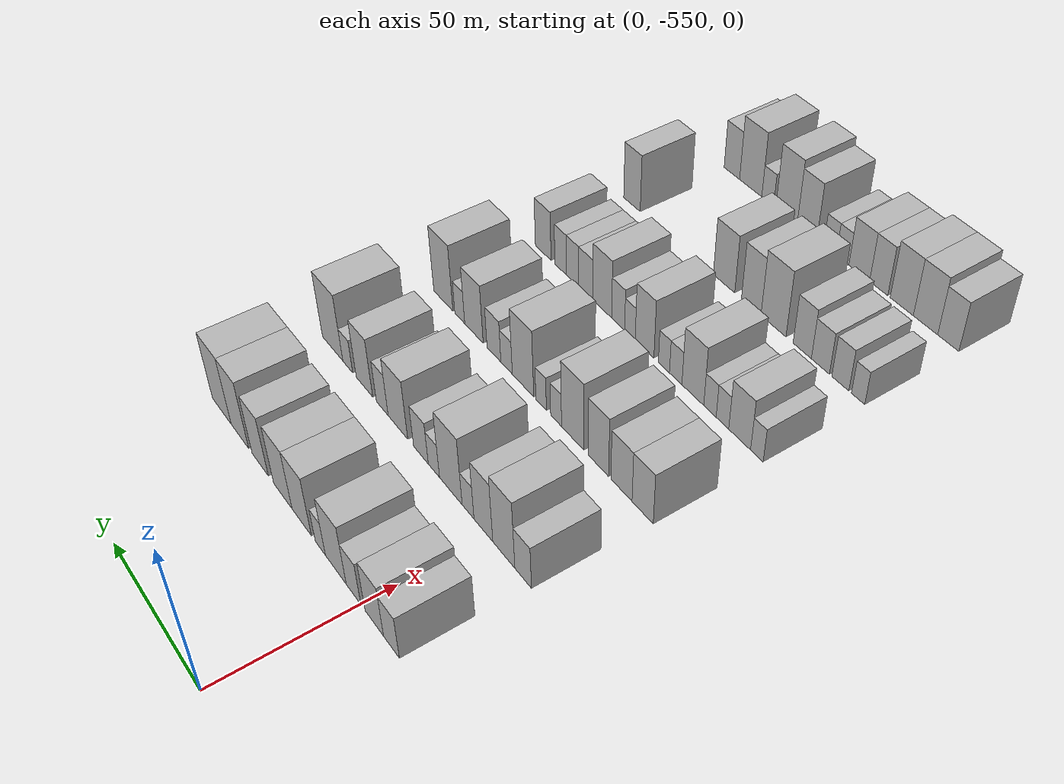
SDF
<sdf version="1.6">
 <world name="default">
  <model name="building_1">
   <static>1</static>
   <pose>50.0000 -564.4000 0 0.000000 0.000000 0.000000</pose>
   <link name="link">
    <pose>0 0 7.50 0 0 0</pose>
    <collision name="collision"><geometry><box><size>20.0000 7.1999 15.0000</size></box></geometry></collision>
    <visual name="visual">
     <cast_shadows>0</cast_shadows>
     <geometry><box><size>20.0000 7.1999 15.0000</size></box></geometry>
     <material>
      <script>
       <uri>model://HANNAS_wall/materials/scripts</uri>
       <uri>model://HANNAS_wall/materials/textures</uri>
       <name>vrc/HANNAS_wall</name>
      </script>
     </material>
    </visual>
   </link>
  </model>
  <model name="building_2">
   <static>1</static>
   <pose>50.0000 -556.4400 0 0.000000 0.000000 0.000000</pose>
   <link name="link">
    <pose>0 0 9.00 0 0 0</pose>
    <collision name="collision"><geometry><box><size>20.0000 8.7201 18.0000</size></box></geometry></collision>
    <visual name="visual">
     <cast_shadows>0</cast_shadows>
     <geometry><box><size>20.0000 8.7201 18.0000</size></box></geometry>
     <material>
      <script>
       <uri>model://HANNAS_wall/materials/scripts</uri>
       <uri>model://HANNAS_wall/materials/textures</uri>
       <name>vrc/HANNAS_wall</name>
      </script>
     </material>
    </visual>
   </link>
  </model>
  <model name="building_3">
   <static>1</static>
   <pose>50.0000 -546.5396 0 0.000000 0.000000 0.000000</pose>
   <link name="link">
    <pose>0 0 7.50 0 0 0</pose>
    <collision name="collision"><geometry><box><size>20.0000 7.0806 15.0000</size></box></geometry></collision>
    <visual name="visual">
     <cast_shadows>0</cast_shadows>
     <geometry><box><size>20.0000 7.0806 15.0000</size></box></geometry>
     <material>
      <script>
       <uri>model://HANNAS_wall/materials/scripts</uri>
       <uri>model://HANNAS_wall/materials/textures</uri>
       <name>vrc/HANNAS_wall</name>
      </script>
     </material>
    </visual>
   </link>
  </model>
  <model name="building_4">
   <static>1</static>
   <pose>50.0000 -537.8108 0 0.000000 0.000000 0.000000</pose>
   <link name="link">
    <pose>0 0 10.50 0 0 0</pose>
    <collision name="collision"><geometry><box><size>20.0000 10.3770 21.0000</size></box></geometry></collision>
    <visual name="visual">
     <cast_shadows>0</cast_shadows>
     <geometry><box><size>20.0000 10.3770 21.0000</size></box></geometry>
     <material>
      <script>
       <uri>model://HANNAS_wall/materials/scripts</uri>
       <uri>model://HANNAS_wall/materials/textures</uri>
       <name>vrc/HANNAS_wall</name>
      </script>
     </material>
    </visual>
   </link>
  </model>
  <model name="building_5">
   <static>1</static>
   <pose>50.0000 -529.9880 0 0.000000 0.000000 0.000000</pose>
   <link name="link">
    <pose>0 0 6.00 0 0 0</pose>
    <collision name="collision"><geometry><box><size>20.0000 5.2685 12.0000</size></box></geometry></collision>
    <visual name="visual">
     <cast_shadows>0</cast_shadows>
     <geometry><box><size>20.0000 5.2685 12.0000</size></box></geometry>
     <material>
      <script>
       <uri>model://HANNAS_wall/materials/scripts</uri>
       <uri>model://HANNAS_wall/materials/textures</uri>
       <name>vrc/HANNAS_wall</name>
      </script>
     </material>
    </visual>
   </link>
  </model>
  <model name="building_6">
   <static>1</static>
   <pose>50.0000 -520.2095 0 0.000000 0.000000 0.000000</pose>
   <link name="link">
    <pose>0 0 10.50 0 0 0</pose>
    <collision name="collision"><geometry><box><size>20.0000 10.2885 21.0000</size></box></geometry></collision>
    <visual name="visual">
     <cast_shadows>0</cast_shadows>
     <geometry><box><size>20.0000 10.2885 21.0000</size></box></geometry>
     <material>
      <script>
       <uri>model://HANNAS_wall/materials/scripts</uri>
       <uri>model://HANNAS_wall/materials/textures</uri>
       <name>vrc/HANNAS_wall</name>
      </script>
     </material>
    </visual>
   </link>
  </model>
  <model name="building_7">
   <static>1</static>
   <pose>50.0000 -509.9929 0 0.000000 0.000000 0.000000</pose>
   <link name="link">
    <pose>0 0 10.50 0 0 0</pose>
    <collision name="collision"><geometry><box><size>20.0000 10.1447 21.0000</size></box></geometry></collision>
    <visual name="visual">
     <cast_shadows>0</cast_shadows>
     <geometry><box><size>20.0000 10.1447 21.0000</size></box></geometry>
     <material>
      <script>
       <uri>model://HANNAS_wall/materials/scripts</uri>
       <uri>model://HANNAS_wall/materials/textures</uri>
       <name>vrc/HANNAS_wall</name>
      </script>
     </material>
    </visual>
   </link>
  </model>
  <model name="building_8">
   <static>1</static>
   <pose>50.0000 -497.2943 0 0.000000 0.000000 0.000000</pose>
   <link name="link">
    <pose>0 0 10.50 0 0 0</pose>
    <collision name="collision"><geometry><box><size>20.0000 9.2524 21.0000</size></box></geometry></collision>
    <visual name="visual">
     <cast_shadows>0</cast_shadows>
     <geometry><box><size>20.0000 9.2524 21.0000</size></box></geometry>
     <material>
      <script>
       <uri>model://HANNAS_wall/materials/scripts</uri>
       <uri>model://HANNAS_wall/materials/textures</uri>
       <name>vrc/HANNAS_wall</name>
      </script>
     </material>
    </visual>
   </link>
  </model>
  <model name="building_9">
   <static>1</static>
   <pose>50.0000 -485.4464 0 0.000000 0.000000 0.000000</pose>
   <link name="link">
    <pose>0 0 12.00 0 0 0</pose>
    <collision name="collision"><geometry><box><size>20.0000 10.4436 24.0000</size></box></geometry></collision>
    <visual name="visual">
     <cast_shadows>0</cast_shadows>
     <geometry><box><size>20.0000 10.4436 24.0000</size></box></geometry>
     <material>
      <script>
       <uri>model://HANNAS_wall/materials/scripts</uri>
       <uri>model://HANNAS_wall/materials/textures</uri>
       <name>vrc/HANNAS_wall</name>
      </script>
     </material>
    </visual>
   </link>
  </model>
  <model name="building_10">
   <static>1</static>
   <pose>50.0000 -474.4987 0 0.000000 0.000000 0.000000</pose>
   <link name="link">
    <pose>0 0 12.00 0 0 0</pose>
    <collision name="collision"><geometry><box><size>20.0000 11.4517 24.0000</size></box></geometry></collision>
    <visual name="visual">
     <cast_shadows>0</cast_shadows>
     <geometry><box><size>20.0000 11.4517 24.0000</size></box></geometry>
     <material>
      <script>
       <uri>model://HANNAS_wall/materials/scripts</uri>
       <uri>model://HANNAS_wall/materials/textures</uri>
       <name>vrc/HANNAS_wall</name>
      </script>
     </material>
    </visual>
   </link>
  </model>
  <model name="building_126">
   <static>1</static>
   <pose>85.0000 -565.4283 0 0.000000 0.000000 0.000000</pose>
   <link name="link">
    <pose>0 0 7.50 0 0 0</pose>
    <collision name="collision"><geometry><box><size>20.0000 7.1434 15.0000</size></box></geometry></collision>
    <visual name="visual">
     <cast_shadows>0</cast_shadows>
     <geometry><box><size>20.0000 7.1434 15.0000</size></box></geometry>
     <material>
      <script>
       <uri>model://HANNAS_wall/materials/scripts</uri>
       <uri>model://HANNAS_wall/materials/textures</uri>
       <name>vrc/HANNAS_wall</name>
      </script>
     </material>
    </visual>
   </link>
  </model>
  <model name="building_127">
   <static>1</static>
   <pose>85.0000 -556.9832 0 0.000000 0.000000 0.000000</pose>
   <link name="link">
    <pose>0 0 12.00 0 0 0</pose>
    <collision name="collision"><geometry><box><size>20.0000 9.7467 24.0000</size></box></geometry></collision>
    <visual name="visual">
     <cast_shadows>0</cast_shadows>
     <geometry><box><size>20.0000 9.7467 24.0000</size></box></geometry>
     <material>
      <script>
       <uri>model://HANNAS_wall/materials/scripts</uri>
       <uri>model://HANNAS_wall/materials/textures</uri>
       <name>vrc/HANNAS_wall</name>
      </script>
     </material>
    </visual>
   </link>
  </model>
  <model name="building_128">
   <static>1</static>
   <pose>85.0000 -547.8302 0 0.000000 0.000000 0.000000</pose>
   <link name="link">
    <pose>0 0 10.50 0 0 0</pose>
    <collision name="collision"><geometry><box><size>20.0000 8.5592 21.0000</size></box></geometry></collision>
    <visual name="visual">
     <cast_shadows>0</cast_shadows>
     <geometry><box><size>20.0000 8.5592 21.0000</size></box></geometry>
     <material>
      <script>
       <uri>model://HANNAS_wall/materials/scripts</uri>
       <uri>model://HANNAS_wall/materials/textures</uri>
       <name>vrc/HANNAS_wall</name>
      </script>
     </material>
    </visual>
   </link>
  </model>
  <model name="building_129">
   <static>1</static>
   <pose>85.0000 -540.7961 0 0.000000 0.000000 0.000000</pose>
   <link name="link">
    <pose>0 0 6.00 0 0 0</pose>
    <collision name="collision"><geometry><box><size>20.0000 5.5089 12.0000</size></box></geometry></collision>
    <visual name="visual">
     <cast_shadows>0</cast_shadows>
     <geometry><box><size>20.0000 5.5089 12.0000</size></box></geometry>
     <material>
      <script>
       <uri>model://HANNAS_wall/materials/scripts</uri>
       <uri>model://HANNAS_wall/materials/textures</uri>
       <name>vrc/HANNAS_wall</name>
      </script>
     </material>
    </visual>
   </link>
  </model>
  <model name="building_130">
   <static>1</static>
   <pose>85.0000 -532.6254 0 0.000000 0.000000 0.000000</pose>
   <link name="link">
    <pose>0 0 12.00 0 0 0</pose>
    <collision name="collision"><geometry><box><size>20.0000 10.8325 24.0000</size></box></geometry></collision>
    <visual name="visual">
     <cast_shadows>0</cast_shadows>
     <geometry><box><size>20.0000 10.8325 24.0000</size></box></geometry>
     <material>
      <script>
       <uri>model://HANNAS_wall/materials/scripts</uri>
       <uri>model://HANNAS_wall/materials/textures</uri>
       <name>vrc/HANNAS_wall</name>
      </script>
     </material>
    </visual>
   </link>
  </model>
  <model name="building_131">
   <static>1</static>
   <pose>85.0000 -524.4438 0 0.000000 0.000000 0.000000</pose>
   <link name="link">
    <pose>0 0 6.00 0 0 0</pose>
    <collision name="collision"><geometry><box><size>20.0000 5.5306 12.0000</size></box></geometry></collision>
    <visual name="visual">
     <cast_shadows>0</cast_shadows>
     <geometry><box><size>20.0000 5.5306 12.0000</size></box></geometry>
     <material>
      <script>
       <uri>model://HANNAS_wall/materials/scripts</uri>
       <uri>model://HANNAS_wall/materials/textures</uri>
       <name>vrc/HANNAS_wall</name>
      </script>
     </material>
    </visual>
   </link>
  </model>
  <model name="building_132">
   <static>1</static>
   <pose>85.0000 -517.9896 0 0.000000 0.000000 0.000000</pose>
   <link name="link">
    <pose>0 0 7.50 0 0 0</pose>
    <collision name="collision"><geometry><box><size>20.0000 7.3778 15.0000</size></box></geometry></collision>
    <visual name="visual">
     <cast_shadows>0</cast_shadows>
     <geometry><box><size>20.0000 7.3778 15.0000</size></box></geometry>
     <material>
      <script>
       <uri>model://HANNAS_wall/materials/scripts</uri>
       <uri>model://HANNAS_wall/materials/textures</uri>
       <name>vrc/HANNAS_wall</name>
      </script>
     </material>
    </visual>
   </link>
  </model>
  <model name="building_133">
   <static>1</static>
   <pose>85.0000 -506.2135 0 0.000000 0.000000 0.000000</pose>
   <link name="link">
    <pose>0 0 10.50 0 0 0</pose>
    <collision name="collision"><geometry><box><size>20.0000 10.1746 21.0000</size></box></geometry></collision>
    <visual name="visual">
     <cast_shadows>0</cast_shadows>
     <geometry><box><size>20.0000 10.1746 21.0000</size></box></geometry>
     <material>
      <script>
       <uri>model://HANNAS_wall/materials/scripts</uri>
       <uri>model://HANNAS_wall/materials/textures</uri>
       <name>vrc/HANNAS_wall</name>
      </script>
     </material>
    </visual>
   </link>
  </model>
  <model name="building_134">
   <static>1</static>
   <pose>85.0000 -497.9697 0 0.000000 0.000000 0.000000</pose>
   <link name="link">
    <pose>0 0 7.50 0 0 0</pose>
    <collision name="collision"><geometry><box><size>20.0000 6.3129 15.0000</size></box></geometry></collision>
    <visual name="visual">
     <cast_shadows>0</cast_shadows>
     <geometry><box><size>20.0000 6.3129 15.0000</size></box></geometry>
     <material>
      <script>
       <uri>model://HANNAS_wall/materials/scripts</uri>
       <uri>model://HANNAS_wall/materials/textures</uri>
       <name>vrc/HANNAS_wall</name>
      </script>
     </material>
    </visual>
   </link>
  </model>
  <model name="building_135">
   <static>1</static>
   <pose>85.0000 -488.3057 0 0.000000 0.000000 0.000000</pose>
   <link name="link">
    <pose>0 0 10.50 0 0 0</pose>
    <collision name="collision"><geometry><box><size>20.0000 9.0151 21.0000</size></box></geometry></collision>
    <visual name="visual">
     <cast_shadows>0</cast_shadows>
     <geometry><box><size>20.0000 9.0151 21.0000</size></box></geometry>
     <material>
      <script>
       <uri>model://HANNAS_wall/materials/scripts</uri>
       <uri>model://HANNAS_wall/materials/textures</uri>
       <name>vrc/HANNAS_wall</name>
      </script>
     </material>
    </visual>
   </link>
  </model>
  <model name="building_136">
   <static>1</static>
   <pose>85.0000 -479.0020 0 0.000000 0.000000 0.000000</pose>
   <link name="link">
    <pose>0 0 6.00 0 0 0</pose>
    <collision name="collision"><geometry><box><size>20.0000 5.5922 12.0000</size></box></geometry></collision>
    <visual name="visual">
     <cast_shadows>0</cast_shadows>
     <geometry><box><size>20.0000 5.5922 12.0000</size></box></geometry>
     <material>
      <script>
       <uri>model://HANNAS_wall/materials/scripts</uri>
       <uri>model://HANNAS_wall/materials/textures</uri>
       <name>vrc/HANNAS_wall</name>
      </script>
     </material>
    </visual>
   </link>
  </model>
  <model name="building_137">
   <static>1</static>
   <pose>85.0000 -470.2932 0 0.000000 0.000000 0.000000</pose>
   <link name="link">
    <pose>0 0 12.00 0 0 0</pose>
    <collision name="collision"><geometry><box><size>20.0000 11.8255 24.0000</size></box></geometry></collision>
    <visual name="visual">
     <cast_shadows>0</cast_shadows>
     <geometry><box><size>20.0000 11.8255 24.0000</size></box></geometry>
     <material>
      <script>
       <uri>model://HANNAS_wall/materials/scripts</uri>
       <uri>model://HANNAS_wall/materials/textures</uri>
       <name>vrc/HANNAS_wall</name>
      </script>
     </material>
    </visual>
   </link>
  </model>
  <model name="building_254">
   <static>1</static>
   <pose>120.0000 -565.6481 0 0.000000 0.000000 0.000000</pose>
   <link name="link">
    <pose>0 0 9.00 0 0 0</pose>
    <collision name="collision"><geometry><box><size>20.0000 8.7039 18.0000</size></box></geometry></collision>
    <visual name="visual">
     <cast_shadows>0</cast_shadows>
     <geometry><box><size>20.0000 8.7039 18.0000</size></box></geometry>
     <material>
      <script>
       <uri>model://HANNAS_wall/materials/scripts</uri>
       <uri>model://HANNAS_wall/materials/textures</uri>
       <name>vrc/HANNAS_wall</name>
      </script>
     </material>
    </visual>
   </link>
  </model>
  <model name="building_255">
   <static>1</static>
   <pose>120.0000 -556.8426 0 0.000000 0.000000 0.000000</pose>
   <link name="link">
    <pose>0 0 9.00 0 0 0</pose>
    <collision name="collision"><geometry><box><size>20.0000 8.9070 18.0000</size></box></geometry></collision>
    <visual name="visual">
     <cast_shadows>0</cast_shadows>
     <geometry><box><size>20.0000 8.9070 18.0000</size></box></geometry>
     <material>
      <script>
       <uri>model://HANNAS_wall/materials/scripts</uri>
       <uri>model://HANNAS_wall/materials/textures</uri>
       <name>vrc/HANNAS_wall</name>
      </script>
     </material>
    </visual>
   </link>
  </model>
  <model name="building_256">
   <static>1</static>
   <pose>120.0000 -546.9304 0 0.000000 0.000000 0.000000</pose>
   <link name="link">
    <pose>0 0 10.50 0 0 0</pose>
    <collision name="collision"><geometry><box><size>20.0000 8.9175 21.0000</size></box></geometry></collision>
    <visual name="visual">
     <cast_shadows>0</cast_shadows>
     <geometry><box><size>20.0000 8.9175 21.0000</size></box></geometry>
     <material>
      <script>
       <uri>model://HANNAS_wall/materials/scripts</uri>
       <uri>model://HANNAS_wall/materials/textures</uri>
       <name>vrc/HANNAS_wall</name>
      </script>
     </material>
    </visual>
   </link>
  </model>
  <model name="building_257">
   <static>1</static>
   <pose>120.0000 -535.4511 0 0.000000 0.000000 0.000000</pose>
   <link name="link">
    <pose>0 0 12.00 0 0 0</pose>
    <collision name="collision"><geometry><box><size>20.0000 10.0412 24.0000</size></box></geometry></collision>
    <visual name="visual">
     <cast_shadows>0</cast_shadows>
     <geometry><box><size>20.0000 10.0412 24.0000</size></box></geometry>
     <material>
      <script>
       <uri>model://HANNAS_wall/materials/scripts</uri>
       <uri>model://HANNAS_wall/materials/textures</uri>
       <name>vrc/HANNAS_wall</name>
      </script>
     </material>
    </visual>
   </link>
  </model>
  <model name="building_258">
   <static>1</static>
   <pose>120.0000 -527.9104 0 0.000000 0.000000 0.000000</pose>
   <link name="link">
    <pose>0 0 6.00 0 0 0</pose>
    <collision name="collision"><geometry><box><size>20.0000 5.0403 12.0000</size></box></geometry></collision>
    <visual name="visual">
     <cast_shadows>0</cast_shadows>
     <geometry><box><size>20.0000 5.0403 12.0000</size></box></geometry>
     <material>
      <script>
       <uri>model://HANNAS_wall/materials/scripts</uri>
       <uri>model://HANNAS_wall/materials/textures</uri>
       <name>vrc/HANNAS_wall</name>
      </script>
     </material>
    </visual>
   </link>
  </model>
  <model name="building_259">
   <static>1</static>
   <pose>120.0000 -520.9010 0 0.000000 0.000000 0.000000</pose>
   <link name="link">
    <pose>0 0 6.00 0 0 0</pose>
    <collision name="collision"><geometry><box><size>20.0000 4.9784 12.0000</size></box></geometry></collision>
    <visual name="visual">
     <cast_shadows>0</cast_shadows>
     <geometry><box><size>20.0000 4.9784 12.0000</size></box></geometry>
     <material>
      <script>
       <uri>model://HANNAS_wall/materials/scripts</uri>
       <uri>model://HANNAS_wall/materials/textures</uri>
       <name>vrc/HANNAS_wall</name>
      </script>
     </material>
    </visual>
   </link>
  </model>
  <model name="building_260">
   <static>1</static>
   <pose>120.0000 -512.1886 0 0.000000 0.000000 0.000000</pose>
   <link name="link">
    <pose>0 0 12.00 0 0 0</pose>
    <collision name="collision"><geometry><box><size>20.0000 10.4464 24.0000</size></box></geometry></collision>
    <visual name="visual">
     <cast_shadows>0</cast_shadows>
     <geometry><box><size>20.0000 10.4464 24.0000</size></box></geometry>
     <material>
      <script>
       <uri>model://HANNAS_wall/materials/scripts</uri>
       <uri>model://HANNAS_wall/materials/textures</uri>
       <name>vrc/HANNAS_wall</name>
      </script>
     </material>
    </visual>
   </link>
  </model>
  <model name="building_261">
   <static>1</static>
   <pose>120.0000 -504.1127 0 0.000000 0.000000 0.000000</pose>
   <link name="link">
    <pose>0 0 6.00 0 0 0</pose>
    <collision name="collision"><geometry><box><size>20.0000 5.7055 12.0000</size></box></geometry></collision>
    <visual name="visual">
     <cast_shadows>0</cast_shadows>
     <geometry><box><size>20.0000 5.7055 12.0000</size></box></geometry>
     <material>
      <script>
       <uri>model://HANNAS_wall/materials/scripts</uri>
       <uri>model://HANNAS_wall/materials/textures</uri>
       <name>vrc/HANNAS_wall</name>
      </script>
     </material>
    </visual>
   </link>
  </model>
  <model name="building_262">
   <static>1</static>
   <pose>120.0000 -497.7507 0 0.000000 0.000000 0.000000</pose>
   <link name="link">
    <pose>0 0 7.50 0 0 0</pose>
    <collision name="collision"><geometry><box><size>20.0000 7.0185 15.0000</size></box></geometry></collision>
    <visual name="visual">
     <cast_shadows>0</cast_shadows>
     <geometry><box><size>20.0000 7.0185 15.0000</size></box></geometry>
     <material>
      <script>
       <uri>model://HANNAS_wall/materials/scripts</uri>
       <uri>model://HANNAS_wall/materials/textures</uri>
       <name>vrc/HANNAS_wall</name>
      </script>
     </material>
    </visual>
   </link>
  </model>
  <model name="building_263">
   <static>1</static>
   <pose>120.0000 -487.4108 0 0.000000 0.000000 0.000000</pose>
   <link name="link">
    <pose>0 0 10.50 0 0 0</pose>
    <collision name="collision"><geometry><box><size>20.0000 9.6613 21.0000</size></box></geometry></collision>
    <visual name="visual">
     <cast_shadows>0</cast_shadows>
     <geometry><box><size>20.0000 9.6613 21.0000</size></box></geometry>
     <material>
      <script>
       <uri>model://HANNAS_wall/materials/scripts</uri>
       <uri>model://HANNAS_wall/materials/textures</uri>
       <name>vrc/HANNAS_wall</name>
      </script>
     </material>
    </visual>
   </link>
  </model>
  <model name="building_264">
   <static>1</static>
   <pose>120.0000 -479.9285 0 0.000000 0.000000 0.000000</pose>
   <link name="link">
    <pose>0 0 6.00 0 0 0</pose>
    <collision name="collision"><geometry><box><size>20.0000 5.3032 12.0000</size></box></geometry></collision>
    <visual name="visual">
     <cast_shadows>0</cast_shadows>
     <geometry><box><size>20.0000 5.3032 12.0000</size></box></geometry>
     <material>
      <script>
       <uri>model://HANNAS_wall/materials/scripts</uri>
       <uri>model://HANNAS_wall/materials/textures</uri>
       <name>vrc/HANNAS_wall</name>
      </script>
     </material>
    </visual>
   </link>
  </model>
  <model name="building_265">
   <static>1</static>
   <pose>120.0000 -471.0149 0 0.000000 0.000000 0.000000</pose>
   <link name="link">
    <pose>0 0 12.00 0 0 0</pose>
    <collision name="collision"><geometry><box><size>20.0000 10.5240 24.0000</size></box></geometry></collision>
    <visual name="visual">
     <cast_shadows>0</cast_shadows>
     <geometry><box><size>20.0000 10.5240 24.0000</size></box></geometry>
     <material>
      <script>
       <uri>model://HANNAS_wall/materials/scripts</uri>
       <uri>model://HANNAS_wall/materials/textures</uri>
       <name>vrc/HANNAS_wall</name>
      </script>
     </material>
    </visual>
   </link>
  </model>
  <model name="building_390">
   <static>1</static>
   <pose>155.0000 -567.5108 0 0.000000 0.000000 0.000000</pose>
   <link name="link">
    <pose>0 0 6.00 0 0 0</pose>
    <collision name="collision"><geometry><box><size>20.0000 4.9784 12.0000</size></box></geometry></collision>
    <visual name="visual">
     <cast_shadows>0</cast_shadows>
     <geometry><box><size>20.0000 4.9784 12.0000</size></box></geometry>
     <material>
      <script>
       <uri>model://HANNAS_wall/materials/scripts</uri>
       <uri>model://HANNAS_wall/materials/textures</uri>
       <name>vrc/HANNAS_wall</name>
      </script>
     </material>
    </visual>
   </link>
  </model>
  <model name="building_391">
   <static>1</static>
   <pose>155.0000 -560.5972 0 0.000000 0.000000 0.000000</pose>
   <link name="link">
    <pose>0 0 9.00 0 0 0</pose>
    <collision name="collision"><geometry><box><size>20.0000 8.8489 18.0000</size></box></geometry></collision>
    <visual name="visual">
     <cast_shadows>0</cast_shadows>
     <geometry><box><size>20.0000 8.8489 18.0000</size></box></geometry>
     <material>
      <script>
       <uri>model://HANNAS_wall/materials/scripts</uri>
       <uri>model://HANNAS_wall/materials/textures</uri>
       <name>vrc/HANNAS_wall</name>
      </script>
     </material>
    </visual>
   </link>
  </model>
  <model name="building_392">
   <static>1</static>
   <pose>155.0000 -553.5778 0 0.000000 0.000000 0.000000</pose>
   <link name="link">
    <pose>0 0 6.00 0 0 0</pose>
    <collision name="collision"><geometry><box><size>20.0000 5.1900 12.0000</size></box></geometry></collision>
    <visual name="visual">
     <cast_shadows>0</cast_shadows>
     <geometry><box><size>20.0000 5.1900 12.0000</size></box></geometry>
     <material>
      <script>
       <uri>model://HANNAS_wall/materials/scripts</uri>
       <uri>model://HANNAS_wall/materials/textures</uri>
       <name>vrc/HANNAS_wall</name>
      </script>
     </material>
    </visual>
   </link>
  </model>
  <model name="building_393">
   <static>1</static>
   <pose>155.0000 -548.3781 0 0.000000 0.000000 0.000000</pose>
   <link name="link">
    <pose>0 0 6.00 0 0 0</pose>
    <collision name="collision"><geometry><box><size>20.0000 5.2093 12.0000</size></box></geometry></collision>
    <visual name="visual">
     <cast_shadows>0</cast_shadows>
     <geometry><box><size>20.0000 5.2093 12.0000</size></box></geometry>
     <material>
      <script>
       <uri>model://HANNAS_wall/materials/scripts</uri>
       <uri>model://HANNAS_wall/materials/textures</uri>
       <name>vrc/HANNAS_wall</name>
      </script>
     </material>
    </visual>
   </link>
  </model>
  <model name="building_394">
   <static>1</static>
   <pose>155.0000 -541.0785 0 0.000000 0.000000 0.000000</pose>
   <link name="link">
    <pose>0 0 10.50 0 0 0</pose>
    <collision name="collision"><geometry><box><size>20.0000 9.3899 21.0000</size></box></geometry></collision>
    <visual name="visual">
     <cast_shadows>0</cast_shadows>
     <geometry><box><size>20.0000 9.3899 21.0000</size></box></geometry>
     <material>
      <script>
       <uri>model://HANNAS_wall/materials/scripts</uri>
       <uri>model://HANNAS_wall/materials/textures</uri>
       <name>vrc/HANNAS_wall</name>
      </script>
     </material>
    </visual>
   </link>
  </model>
  <model name="building_395">
   <static>1</static>
   <pose>155.0000 -533.6454 0 0.000000 0.000000 0.000000</pose>
   <link name="link">
    <pose>0 0 6.00 0 0 0</pose>
    <collision name="collision"><geometry><box><size>20.0000 5.4763 12.0000</size></box></geometry></collision>
    <visual name="visual">
     <cast_shadows>0</cast_shadows>
     <geometry><box><size>20.0000 5.4763 12.0000</size></box></geometry>
     <material>
      <script>
       <uri>model://HANNAS_wall/materials/scripts</uri>
       <uri>model://HANNAS_wall/materials/textures</uri>
       <name>vrc/HANNAS_wall</name>
      </script>
     </material>
    </visual>
   </link>
  </model>
  <model name="building_396">
   <static>1</static>
   <pose>155.0000 -528.4317 0 0.000000 0.000000 0.000000</pose>
   <link name="link">
    <pose>0 0 6.00 0 0 0</pose>
    <collision name="collision"><geometry><box><size>20.0000 4.9513 12.0000</size></box></geometry></collision>
    <visual name="visual">
     <cast_shadows>0</cast_shadows>
     <geometry><box><size>20.0000 4.9513 12.0000</size></box></geometry>
     <material>
      <script>
       <uri>model://HANNAS_wall/materials/scripts</uri>
       <uri>model://HANNAS_wall/materials/textures</uri>
       <name>vrc/HANNAS_wall</name>
      </script>
     </material>
    </visual>
   </link>
  </model>
  <model name="building_397">
   <static>1</static>
   <pose>155.0000 -519.6773 0 0.000000 0.000000 0.000000</pose>
   <link name="link">
    <pose>0 0 10.50 0 0 0</pose>
    <collision name="collision"><geometry><box><size>20.0000 8.5575 21.0000</size></box></geometry></collision>
    <visual name="visual">
     <cast_shadows>0</cast_shadows>
     <geometry><box><size>20.0000 8.5575 21.0000</size></box></geometry>
     <material>
      <script>
       <uri>model://HANNAS_wall/materials/scripts</uri>
       <uri>model://HANNAS_wall/materials/textures</uri>
       <name>vrc/HANNAS_wall</name>
      </script>
     </material>
    </visual>
   </link>
  </model>
  <model name="building_398">
   <static>1</static>
   <pose>155.0000 -512.9215 0 0.000000 0.000000 0.000000</pose>
   <link name="link">
    <pose>0 0 6.00 0 0 0</pose>
    <collision name="collision"><geometry><box><size>20.0000 4.9541 12.0000</size></box></geometry></collision>
    <visual name="visual">
     <cast_shadows>0</cast_shadows>
     <geometry><box><size>20.0000 4.9541 12.0000</size></box></geometry>
     <material>
      <script>
       <uri>model://HANNAS_wall/materials/scripts</uri>
       <uri>model://HANNAS_wall/materials/textures</uri>
       <name>vrc/HANNAS_wall</name>
      </script>
     </material>
    </visual>
   </link>
  </model>
  <model name="building_399">
   <static>1</static>
   <pose>155.0000 -507.3686 0 0.000000 0.000000 0.000000</pose>
   <link name="link">
    <pose>0 0 7.50 0 0 0</pose>
    <collision name="collision"><geometry><box><size>20.0000 6.1516 15.0000</size></box></geometry></collision>
    <visual name="visual">
     <cast_shadows>0</cast_shadows>
     <geometry><box><size>20.0000 6.1516 15.0000</size></box></geometry>
     <material>
      <script>
       <uri>model://HANNAS_wall/materials/scripts</uri>
       <uri>model://HANNAS_wall/materials/textures</uri>
       <name>vrc/HANNAS_wall</name>
      </script>
     </material>
    </visual>
   </link>
  </model>
  <model name="building_400">
   <static>1</static>
   <pose>155.0000 -499.7599 0 0.000000 0.000000 0.000000</pose>
   <link name="link">
    <pose>0 0 10.50 0 0 0</pose>
    <collision name="collision"><geometry><box><size>20.0000 9.0657 21.0000</size></box></geometry></collision>
    <visual name="visual">
     <cast_shadows>0</cast_shadows>
     <geometry><box><size>20.0000 9.0657 21.0000</size></box></geometry>
     <material>
      <script>
       <uri>model://HANNAS_wall/materials/scripts</uri>
       <uri>model://HANNAS_wall/materials/textures</uri>
       <name>vrc/HANNAS_wall</name>
      </script>
     </material>
    </visual>
   </link>
  </model>
  <model name="building_401">
   <static>1</static>
   <pose>155.0000 -491.7102 0 0.000000 0.000000 0.000000</pose>
   <link name="link">
    <pose>0 0 7.50 0 0 0</pose>
    <collision name="collision"><geometry><box><size>20.0000 7.0338 15.0000</size></box></geometry></collision>
    <visual name="visual">
     <cast_shadows>0</cast_shadows>
     <geometry><box><size>20.0000 7.0338 15.0000</size></box></geometry>
     <material>
      <script>
       <uri>model://HANNAS_wall/materials/scripts</uri>
       <uri>model://HANNAS_wall/materials/textures</uri>
       <name>vrc/HANNAS_wall</name>
      </script>
     </material>
    </visual>
   </link>
  </model>
  <model name="building_402">
   <static>1</static>
   <pose>155.0000 -485.0909 0 0.000000 0.000000 0.000000</pose>
   <link name="link">
    <pose>0 0 7.50 0 0 0</pose>
    <collision name="collision"><geometry><box><size>20.0000 6.2047 15.0000</size></box></geometry></collision>
    <visual name="visual">
     <cast_shadows>0</cast_shadows>
     <geometry><box><size>20.0000 6.2047 15.0000</size></box></geometry>
     <material>
      <script>
       <uri>model://HANNAS_wall/materials/scripts</uri>
       <uri>model://HANNAS_wall/materials/textures</uri>
       <name>vrc/HANNAS_wall</name>
      </script>
     </material>
    </visual>
   </link>
  </model>
  <model name="building_403">
   <static>1</static>
   <pose>155.0000 -478.9840 0 0.000000 0.000000 0.000000</pose>
   <link name="link">
    <pose>0 0 7.50 0 0 0</pose>
    <collision name="collision"><geometry><box><size>20.0000 6.0091 15.0000</size></box></geometry></collision>
    <visual name="visual">
     <cast_shadows>0</cast_shadows>
     <geometry><box><size>20.0000 6.0091 15.0000</size></box></geometry>
     <material>
      <script>
       <uri>model://HANNAS_wall/materials/scripts</uri>
       <uri>model://HANNAS_wall/materials/textures</uri>
       <name>vrc/HANNAS_wall</name>
      </script>
     </material>
    </visual>
   </link>
  </model>
  <model name="building_404">
   <static>1</static>
   <pose>155.0000 -469.8582 0 0.000000 0.000000 0.000000</pose>
   <link name="link">
    <pose>0 0 9.00 0 0 0</pose>
    <collision name="collision"><geometry><box><size>20.0000 8.2426 18.0000</size></box></geometry></collision>
    <visual name="visual">
     <cast_shadows>0</cast_shadows>
     <geometry><box><size>20.0000 8.2426 18.0000</size></box></geometry>
     <material>
      <script>
       <uri>model://HANNAS_wall/materials/scripts</uri>
       <uri>model://HANNAS_wall/materials/textures</uri>
       <name>vrc/HANNAS_wall</name>
      </script>
     </material>
    </visual>
   </link>
  </model>
  <model name="building_517">
   <static>1</static>
   <pose>190.0000 -567.4225 0 0.000000 0.000000 0.000000</pose>
   <link name="link">
    <pose>0 0 6.00 0 0 0</pose>
    <collision name="collision"><geometry><box><size>20.0000 5.1549 12.0000</size></box></geometry></collision>
    <visual name="visual">
     <cast_shadows>0</cast_shadows>
     <geometry><box><size>20.0000 5.1549 12.0000</size></box></geometry>
     <material>
      <script>
       <uri>model://HANNAS_wall/materials/scripts</uri>
       <uri>model://HANNAS_wall/materials/textures</uri>
       <name>vrc/HANNAS_wall</name>
      </script>
     </material>
    </visual>
   </link>
  </model>
  <model name="building_518">
   <static>1</static>
   <pose>190.0000 -560.4899 0 0.000000 0.000000 0.000000</pose>
   <link name="link">
    <pose>0 0 7.50 0 0 0</pose>
    <collision name="collision"><geometry><box><size>20.0000 6.7103 15.0000</size></box></geometry></collision>
    <visual name="visual">
     <cast_shadows>0</cast_shadows>
     <geometry><box><size>20.0000 6.7103 15.0000</size></box></geometry>
     <material>
      <script>
       <uri>model://HANNAS_wall/materials/scripts</uri>
       <uri>model://HANNAS_wall/materials/textures</uri>
       <name>vrc/HANNAS_wall</name>
      </script>
     </material>
    </visual>
   </link>
  </model>
  <model name="building_519">
   <static>1</static>
   <pose>190.0000 -552.4967 0 0.000000 0.000000 0.000000</pose>
   <link name="link">
    <pose>0 0 7.50 0 0 0</pose>
    <collision name="collision"><geometry><box><size>20.0000 7.2760 15.0000</size></box></geometry></collision>
    <visual name="visual">
     <cast_shadows>0</cast_shadows>
     <geometry><box><size>20.0000 7.2760 15.0000</size></box></geometry>
     <material>
      <script>
       <uri>model://HANNAS_wall/materials/scripts</uri>
       <uri>model://HANNAS_wall/materials/textures</uri>
       <name>vrc/HANNAS_wall</name>
      </script>
     </material>
    </visual>
   </link>
  </model>
  <model name="building_520">
   <static>1</static>
   <pose>190.0000 -545.0908 0 0.000000 0.000000 0.000000</pose>
   <link name="link">
    <pose>0 0 9.00 0 0 0</pose>
    <collision name="collision"><geometry><box><size>20.0000 7.5359 18.0000</size></box></geometry></collision>
    <visual name="visual">
     <cast_shadows>0</cast_shadows>
     <geometry><box><size>20.0000 7.5359 18.0000</size></box></geometry>
     <material>
      <script>
       <uri>model://HANNAS_wall/materials/scripts</uri>
       <uri>model://HANNAS_wall/materials/textures</uri>
       <name>vrc/HANNAS_wall</name>
      </script>
     </material>
    </visual>
   </link>
  </model>
  <model name="building_521">
   <static>1</static>
   <pose>190.0000 -532.9529 0 0.000000 0.000000 0.000000</pose>
   <link name="link">
    <pose>0 0 12.00 0 0 0</pose>
    <collision name="collision"><geometry><box><size>20.0000 10.7399 24.0000</size></box></geometry></collision>
    <visual name="visual">
     <cast_shadows>0</cast_shadows>
     <geometry><box><size>20.0000 10.7399 24.0000</size></box></geometry>
     <material>
      <script>
       <uri>model://HANNAS_wall/materials/scripts</uri>
       <uri>model://HANNAS_wall/materials/textures</uri>
       <name>vrc/HANNAS_wall</name>
      </script>
     </material>
    </visual>
   </link>
  </model>
  <model name="building_522">
   <static>1</static>
   <pose>190.0000 -523.2971 0 0.000000 0.000000 0.000000</pose>
   <link name="link">
    <pose>0 0 10.50 0 0 0</pose>
    <collision name="collision"><geometry><box><size>20.0000 8.5718 21.0000</size></box></geometry></collision>
    <visual name="visual">
     <cast_shadows>0</cast_shadows>
     <geometry><box><size>20.0000 8.5718 21.0000</size></box></geometry>
     <material>
      <script>
       <uri>model://HANNAS_wall/materials/scripts</uri>
       <uri>model://HANNAS_wall/materials/textures</uri>
       <name>vrc/HANNAS_wall</name>
      </script>
     </material>
    </visual>
   </link>
  </model>
  <model name="building_523">
   <static>1</static>
   <pose>190.0000 -511.1252 0 0.000000 0.000000 0.000000</pose>
   <link name="link">
    <pose>0 0 10.50 0 0 0</pose>
    <collision name="collision"><geometry><box><size>20.0000 9.7720 21.0000</size></box></geometry></collision>
    <visual name="visual">
     <cast_shadows>0</cast_shadows>
     <geometry><box><size>20.0000 9.7720 21.0000</size></box></geometry>
     <material>
      <script>
       <uri>model://HANNAS_wall/materials/scripts</uri>
       <uri>model://HANNAS_wall/materials/textures</uri>
       <name>vrc/HANNAS_wall</name>
      </script>
     </material>
    </visual>
   </link>
  </model>
  <model name="building_524">
   <static>1</static>
   <pose>190.0000 -466.5117 0 0.000000 0.000000 0.000000</pose>
   <link name="link">
    <pose>0 0 10.50 0 0 0</pose>
    <collision name="collision"><geometry><box><size>20.0000 8.4850 21.0000</size></box></geometry></collision>
    <visual name="visual">
     <cast_shadows>0</cast_shadows>
     <geometry><box><size>20.0000 8.4850 21.0000</size></box></geometry>
     <material>
      <script>
       <uri>model://HANNAS_wall/materials/scripts</uri>
       <uri>model://HANNAS_wall/materials/textures</uri>
       <name>vrc/HANNAS_wall</name>
      </script>
     </material>
    </visual>
   </link>
  </model>
  <model name="building_632">
   <static>1</static>
   <pose>225.0000 -565.9485 0 0.000000 0.000000 0.000000</pose>
   <link name="link">
    <pose>0 0 9.00 0 0 0</pose>
    <collision name="collision"><geometry><box><size>20.0000 8.1029 18.0000</size></box></geometry></collision>
    <visual name="visual">
     <cast_shadows>0</cast_shadows>
     <geometry><box><size>20.0000 8.1029 18.0000</size></box></geometry>
     <material>
      <script>
       <uri>model://HANNAS_wall/materials/scripts</uri>
       <uri>model://HANNAS_wall/materials/textures</uri>
       <name>vrc/HANNAS_wall</name>
      </script>
     </material>
    </visual>
   </link>
  </model>
  <model name="building_633">
   <static>1</static>
   <pose>225.0000 -557.1305 0 0.000000 0.000000 0.000000</pose>
   <link name="link">
    <pose>0 0 10.50 0 0 0</pose>
    <collision name="collision"><geometry><box><size>20.0000 9.5331 21.0000</size></box></geometry></collision>
    <visual name="visual">
     <cast_shadows>0</cast_shadows>
     <geometry><box><size>20.0000 9.5331 21.0000</size></box></geometry>
     <material>
      <script>
       <uri>model://HANNAS_wall/materials/scripts</uri>
       <uri>model://HANNAS_wall/materials/textures</uri>
       <name>vrc/HANNAS_wall</name>
      </script>
     </material>
    </visual>
   </link>
  </model>
  <model name="building_634">
   <static>1</static>
   <pose>225.0000 -547.7042 0 0.000000 0.000000 0.000000</pose>
   <link name="link">
    <pose>0 0 10.50 0 0 0</pose>
    <collision name="collision"><geometry><box><size>20.0000 9.3195 21.0000</size></box></geometry></collision>
    <visual name="visual">
     <cast_shadows>0</cast_shadows>
     <geometry><box><size>20.0000 9.3195 21.0000</size></box></geometry>
     <material>
      <script>
       <uri>model://HANNAS_wall/materials/scripts</uri>
       <uri>model://HANNAS_wall/materials/textures</uri>
       <name>vrc/HANNAS_wall</name>
      </script>
     </material>
    </visual>
   </link>
  </model>
  <model name="building_635">
   <static>1</static>
   <pose>225.0000 -538.3006 0 0.000000 0.000000 0.000000</pose>
   <link name="link">
    <pose>0 0 9.00 0 0 0</pose>
    <collision name="collision"><geometry><box><size>20.0000 7.4876 18.0000</size></box></geometry></collision>
    <visual name="visual">
     <cast_shadows>0</cast_shadows>
     <geometry><box><size>20.0000 7.4876 18.0000</size></box></geometry>
     <material>
      <script>
       <uri>model://HANNAS_wall/materials/scripts</uri>
       <uri>model://HANNAS_wall/materials/textures</uri>
       <name>vrc/HANNAS_wall</name>
      </script>
     </material>
    </visual>
   </link>
  </model>
  <model name="building_636">
   <static>1</static>
   <pose>225.0000 -530.1719 0 0.000000 0.000000 0.000000</pose>
   <link name="link">
    <pose>0 0 9.00 0 0 0</pose>
    <collision name="collision"><geometry><box><size>20.0000 8.7699 18.0000</size></box></geometry></collision>
    <visual name="visual">
     <cast_shadows>0</cast_shadows>
     <geometry><box><size>20.0000 8.7699 18.0000</size></box></geometry>
     <material>
      <script>
       <uri>model://HANNAS_wall/materials/scripts</uri>
       <uri>model://HANNAS_wall/materials/textures</uri>
       <name>vrc/HANNAS_wall</name>
      </script>
     </material>
    </visual>
   </link>
  </model>
  <model name="building_637">
   <static>1</static>
   <pose>225.0000 -523.0691 0 0.000000 0.000000 0.000000</pose>
   <link name="link">
    <pose>0 0 6.00 0 0 0</pose>
    <collision name="collision"><geometry><box><size>20.0000 5.4357 12.0000</size></box></geometry></collision>
    <visual name="visual">
     <cast_shadows>0</cast_shadows>
     <geometry><box><size>20.0000 5.4357 12.0000</size></box></geometry>
     <material>
      <script>
       <uri>model://HANNAS_wall/materials/scripts</uri>
       <uri>model://HANNAS_wall/materials/textures</uri>
       <name>vrc/HANNAS_wall</name>
      </script>
     </material>
    </visual>
   </link>
  </model>
  <model name="building_638">
   <static>1</static>
   <pose>225.0000 -517.5757 0 0.000000 0.000000 0.000000</pose>
   <link name="link">
    <pose>0 0 6.00 0 0 0</pose>
    <collision name="collision"><geometry><box><size>20.0000 5.5510 12.0000</size></box></geometry></collision>
    <visual name="visual">
     <cast_shadows>0</cast_shadows>
     <geometry><box><size>20.0000 5.5510 12.0000</size></box></geometry>
     <material>
      <script>
       <uri>model://HANNAS_wall/materials/scripts</uri>
       <uri>model://HANNAS_wall/materials/textures</uri>
       <name>vrc/HANNAS_wall</name>
      </script>
     </material>
    </visual>
   </link>
  </model>
  <model name="building_639">
   <static>1</static>
   <pose>225.0000 -507.3600 0 0.000000 0.000000 0.000000</pose>
   <link name="link">
    <pose>0 0 10.50 0 0 0</pose>
    <collision name="collision"><geometry><box><size>20.0000 8.8804 21.0000</size></box></geometry></collision>
    <visual name="visual">
     <cast_shadows>0</cast_shadows>
     <geometry><box><size>20.0000 8.8804 21.0000</size></box></geometry>
     <material>
      <script>
       <uri>model://HANNAS_wall/materials/scripts</uri>
       <uri>model://HANNAS_wall/materials/textures</uri>
       <name>vrc/HANNAS_wall</name>
      </script>
     </material>
    </visual>
   </link>
  </model>
  <model name="building_640">
   <static>1</static>
   <pose>225.0000 -497.9816 0 0.000000 0.000000 0.000000</pose>
   <link name="link">
    <pose>0 0 12.00 0 0 0</pose>
    <collision name="collision"><geometry><box><size>20.0000 9.8765 24.0000</size></box></geometry></collision>
    <visual name="visual">
     <cast_shadows>0</cast_shadows>
     <geometry><box><size>20.0000 9.8765 24.0000</size></box></geometry>
     <material>
      <script>
       <uri>model://HANNAS_wall/materials/scripts</uri>
       <uri>model://HANNAS_wall/materials/textures</uri>
       <name>vrc/HANNAS_wall</name>
      </script>
     </material>
    </visual>
   </link>
  </model>
  <model name="building_641">
   <static>1</static>
   <pose>225.0000 -489.2521 0 0.000000 0.000000 0.000000</pose>
   <link name="link">
    <pose>0 0 6.00 0 0 0</pose>
    <collision name="collision"><geometry><box><size>20.0000 5.5825 12.0000</size></box></geometry></collision>
    <visual name="visual">
     <cast_shadows>0</cast_shadows>
     <geometry><box><size>20.0000 5.5825 12.0000</size></box></geometry>
     <material>
      <script>
       <uri>model://HANNAS_wall/materials/scripts</uri>
       <uri>model://HANNAS_wall/materials/textures</uri>
       <name>vrc/HANNAS_wall</name>
      </script>
     </material>
    </visual>
   </link>
  </model>
  <model name="building_642">
   <static>1</static>
   <pose>225.0000 -481.1077 0 0.000000 0.000000 0.000000</pose>
   <link name="link">
    <pose>0 0 12.00 0 0 0</pose>
    <collision name="collision"><geometry><box><size>20.0000 10.7062 24.0000</size></box></geometry></collision>
    <visual name="visual">
     <cast_shadows>0</cast_shadows>
     <geometry><box><size>20.0000 10.7062 24.0000</size></box></geometry>
     <material>
      <script>
       <uri>model://HANNAS_wall/materials/scripts</uri>
       <uri>model://HANNAS_wall/materials/textures</uri>
       <name>vrc/HANNAS_wall</name>
      </script>
     </material>
    </visual>
   </link>
  </model>
  <model name="building_643">
   <static>1</static>
   <pose>225.0000 -471.9390 0 0.000000 0.000000 0.000000</pose>
   <link name="link">
    <pose>0 0 9.00 0 0 0</pose>
    <collision name="collision"><geometry><box><size>20.0000 7.6313 18.0000</size></box></geometry></collision>
    <visual name="visual">
     <cast_shadows>0</cast_shadows>
     <geometry><box><size>20.0000 7.6313 18.0000</size></box></geometry>
     <material>
      <script>
       <uri>model://HANNAS_wall/materials/scripts</uri>
       <uri>model://HANNAS_wall/materials/textures</uri>
       <name>vrc/HANNAS_wall</name>
      </script>
     </material>
    </visual>
   </link>
  </model>
 </world>
</sdf>
